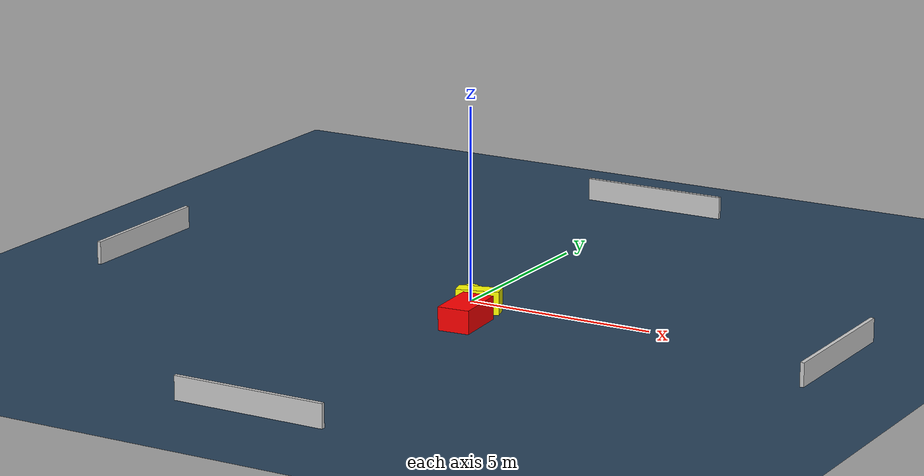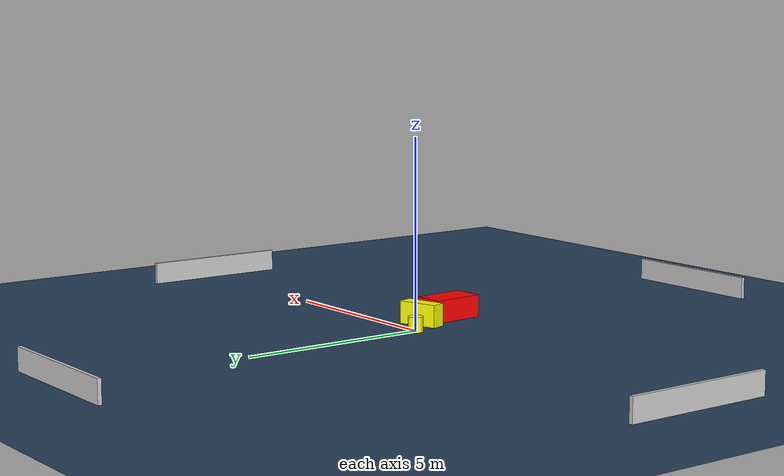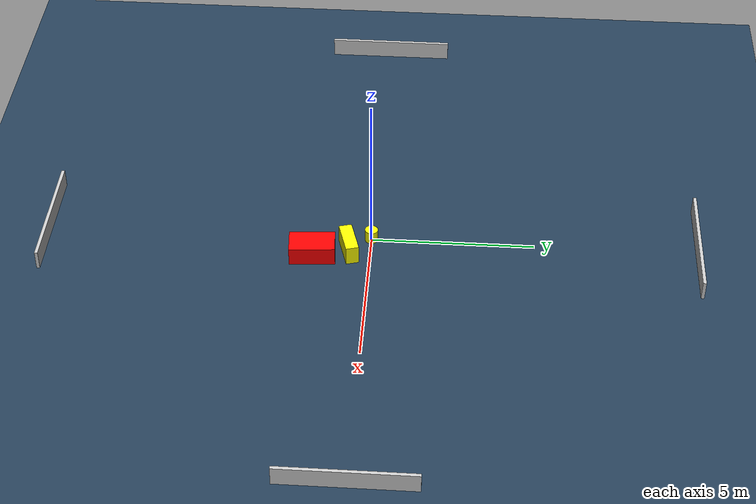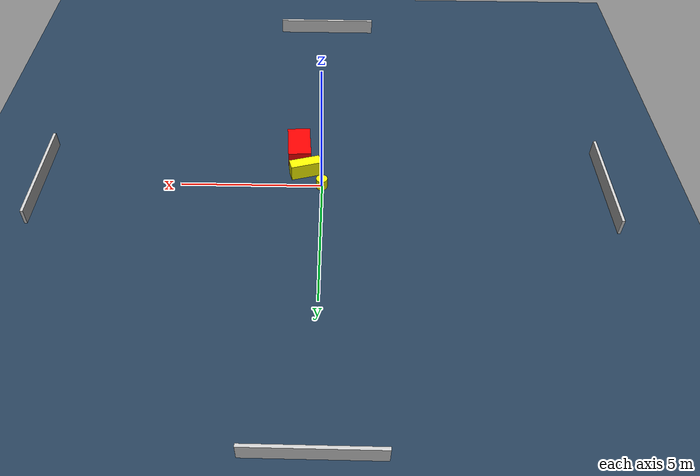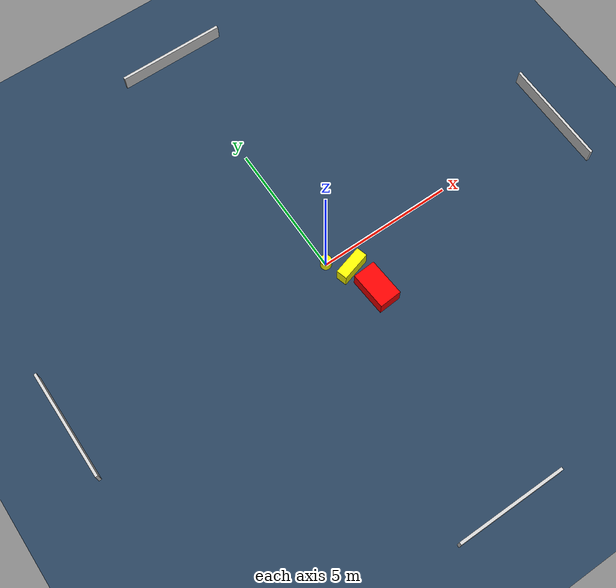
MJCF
<?xml version="1.0" ?>
<mujoco model="generated_environment">
  <option timestep="0.01" integrator="RK4" cone="elliptic"/>
  <default>
    <geom density="1"/>
  </default>
  <asset>
    <texture builtin="gradient" height="3072" name="skybox" rgb1="0.3 0.5 0.7" rgb2="0 0 0" type="skybox" width="512"/>
    <texture builtin="checker" height="300" name="groundplane" rgb1="0.2 0.3 0.4" rgb2="0.1 0.2 0.3" type="2d" width="300"/>
    <material name="groundplane" reflectance="0.2" texrepeat="5 5" texture="groundplane"/>
  </asset>
  <worldbody>
    <light dir="0 0 -1" directional="true" pos="0 0 1.5"/>
    <geom condim="3" friction="0.5 0.005 0.001" material="groundplane" name="floor" pos="0 0 0" size="0 0 0.05" type="plane"/>
    <body name="walls">
      <geom name="wall_1" condim="4" pos="-10.0 0.0 0.3" rgba="0.800000011920929 0.800000011920929 0.800000011920929 1.0" size="0.05 2.0 0.3" type="box"/>
      <geom name="wall_2" condim="4" pos="10.0 0.0 0.3" rgba="0.800000011920929 0.800000011920929 0.800000011920929 1.0" size="0.05 2.0 0.3" type="box"/>
      <geom name="wall_3" condim="4" pos="0.0 -10.0 0.3" rgba="0.800000011920929 0.800000011920929 0.800000011920929 1.0" size="2.0 0.05 0.3" type="box"/>
      <geom name="wall_4" condim="4" pos="0.0 10.0 0.3" rgba="0.800000011920929 0.800000011920929 0.800000011920929 1.0" size="2.0 0.05 0.3" type="box"/>
    </body>
    <body name="robot">
      <joint name="joint_x" type="slide" pos="0 0 0" axis="1 0 0"/>
      <joint name="joint_y" type="slide" pos="0 0 0" axis="0 1 0"/>
      <geom name="robot" type="cylinder" pos="0.0 0.0 0.2" size="0.2 0.2 0.0" mass="5.0" friction="1.0 0.005 0.0001" condim="4" rgba="1.0 1.0 0.0 1.0"/>
    </body>
    <body name="obstacle_1_movable">
      <geom name="obstacle_1_movable" condim="4" pos="0.6074548908362345 -0.6558958892811619 0.3" euler="0 0 105.92785958474677" friction="0.0 0.005 0.001" rgba="1.0 1.0 0.0 1.0" size="0.20025807545180838 0.5505978945859067 0.3" type="box" mass="0.1"/>
      <joint type="free"/>
    </body>
    <body name="obstacle_2_static">
      <geom name="obstacle_2_static" condim="4" pos="0.8695440492761006 -1.7574466766026664 0.3" euler="0 0 184.0634111933849" friction="0.0 0.005 0.001" rgba="1.0 0.0 0.0 1.0" size="0.4129999715305642 0.6995553037183925 0.3" type="box"/>
    </body>
  </worldbody>
  <actuator>
    <motor name="actuator_x" joint="joint_x" gear="1" ctrlrange="-1 1"/>
    <motor name="actuator_y" joint="joint_y" gear="1" ctrlrange="-1 1"/>
  </actuator>
</mujoco>
